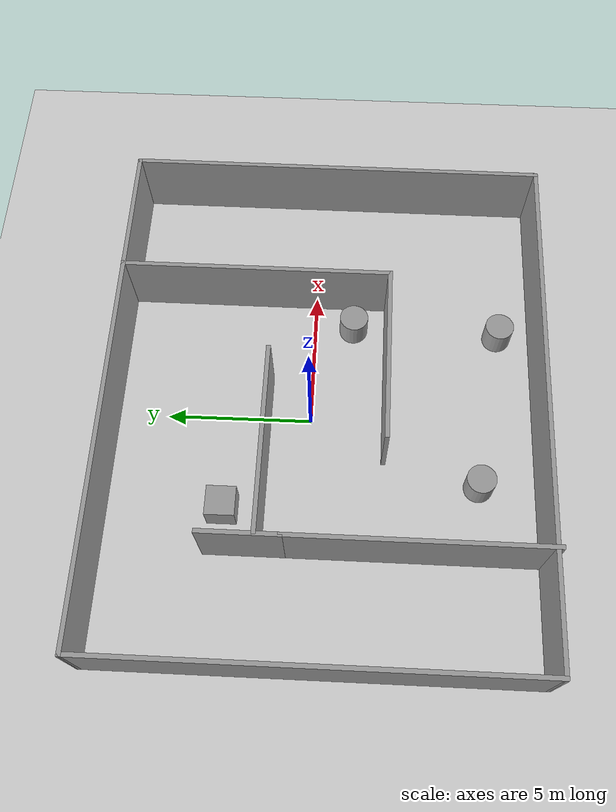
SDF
<sdf version="1.7">
 <world name="default">
  <light name="sun" type="directional">
   <pose>0 0 10 0 -0 0</pose>
   <diffuse>0.8 0.8 0.8 1</diffuse>
   <specular>0.2 0.2 0.2 1</specular>
   <attenuation>
    <range>1000</range>
    <constant>0.9</constant>
    <linear>0.01</linear>
    <quadratic>0.001</quadratic>
   </attenuation>
   <direction>-0.5 0.1 -0.9</direction>
   <spot><inner_angle>0</inner_angle><outer_angle>0</outer_angle><falloff>0</falloff></spot>
  </light>
  <model name="ground_plane">
   <static>1</static>
   <link name="link">
    <collision name="collision">
     <geometry><plane><normal>0 0 1</normal><size>100 100</size></plane></geometry>
     <surface>
      <contact><collide_bitmask>65535</collide_bitmask></contact>
      <friction><ode><mu>100</mu><mu2>50</mu2></ode></friction>
     </surface>
    </collision>
    <visual name="visual">
     <cast_shadows>0</cast_shadows>
     <geometry><plane><normal>0 0 1</normal><size>100 100</size></plane></geometry>
     <material>
      <script><uri>file://media/materials/scripts/gazebo.material</uri><name>Gazebo/Grey</name></script>
     </material>
    </visual>
   </link>
  </model>
  <gravity>0 0 -9.8</gravity>
  <magnetic_field>6e-06 2.3e-05 -4.2e-05</magnetic_field>
  <atmosphere type="adiabatic"/>
  <physics type="ode">
   <max_step_size>0.001</max_step_size>
   <real_time_factor>1</real_time_factor>
   <real_time_update_rate>1000</real_time_update_rate>
  </physics>
  <scene><ambient>0.4 0.4 0.4 1</ambient><background>0.7 0.7 0.7 1</background><shadows>1</shadows></scene>
  <spherical_coordinates>
   <surface_model>EARTH_WGS84</surface_model>
   <latitude_deg>0</latitude_deg>
   <longitude_deg>0</longitude_deg>
   <elevation>0</elevation>
   <heading_deg>0</heading_deg>
  </spherical_coordinates>
  <model name="room_2">
   <pose>0.262486 -0.566076 0 0 0 -1.57498</pose>
   <link name="Wall_16">
    <collision name="Wall_16_Collision">
     <geometry><box><size>14.75 0.15 2.5</size></box></geometry>
     <pose>0 0 1.25 0 -0 0</pose>
    </collision>
    <visual name="Wall_16_Visual">
     <pose>0 0 1.25 0 -0 0</pose>
     <geometry><box><size>14.75 0.15 2.5</size></box></geometry>
     <material>
      <script><uri>file://media/materials/scripts/gazebo.material</uri><name>Gazebo/Grey</name></script>
      <ambient>1 1 1 1</ambient>
     </material>
     <meta><layer>0</layer></meta>
    </visual>
    <pose>-0.063977 8.925 0 0 -0 3.14159</pose>
   </link>
   <link name="Wall_17">
    <collision name="Wall_17_Collision">
     <geometry><box><size>18 0.15 2.5</size></box></geometry>
     <pose>0 0 1.25 0 -0 0</pose>
    </collision>
    <visual name="Wall_17_Visual">
     <pose>0 0 1.25 0 -0 0</pose>
     <geometry><box><size>18 0.15 2.5</size></box></geometry>
     <material>
      <script><uri>file://media/materials/scripts/gazebo.material</uri><name>Gazebo/Grey</name></script>
      <ambient>1 1 1 1</ambient>
     </material>
     <meta><layer>0</layer></meta>
    </visual>
    <pose>-7.36398 0 0 0 -0 -1.5708</pose>
   </link>
   <link name="Wall_19">
    <collision name="Wall_19_Collision">
     <geometry><box><size>9.5 0.15 2.5</size></box></geometry>
     <pose>0 0 1.25 0 -0 0</pose>
    </collision>
    <visual name="Wall_19_Visual">
     <pose>0 0 1.25 0 -0 0</pose>
     <geometry><box><size>9.5 0.15 2.5</size></box></geometry>
     <material>
      <script><uri>file://media/materials/scripts/gazebo.material</uri><name>Gazebo/Grey</name></script>
      <ambient>1 1 1 1</ambient>
     </material>
     <meta><layer>0</layer></meta>
    </visual>
    <pose>-2.69326 4.43753 0 0 -0 0</pose>
   </link>
   <link name="Wall_20">
    <collision name="Wall_20_Collision">
     <geometry><box><size>6.25 0.15 2.5</size></box></geometry>
     <pose>0 0 1.25 0 -0 0</pose>
    </collision>
    <visual name="Wall_20_Visual">
     <pose>0 0 1.25 0 -0 0</pose>
     <geometry><box><size>6.25 0.15 2.5</size></box></geometry>
     <material>
      <script><uri>file://media/materials/scripts/gazebo.material</uri><name>Gazebo/Grey</name></script>
      <ambient>1 1 1 1</ambient>
     </material>
     <meta><layer>0</layer></meta>
    </visual>
    <pose>1.98175 1.38753 0 0 -0 -1.5708</pose>
   </link>
   <link name="Wall_22">
    <collision name="Wall_22_Collision">
     <geometry><box><size>8.75 0.15 2.5</size></box></geometry>
     <pose>0 0 1.25 0 -0 0</pose>
    </collision>
    <visual name="Wall_22_Visual">
     <pose>0 0 1.25 0 -0 0</pose>
     <geometry><box><size>8.75 0.15 2.5</size></box></geometry>
     <material>
      <script><uri>file://media/materials/scripts/gazebo.material</uri><name>Gazebo/Grey</name></script>
      <ambient>1 1 1 1</ambient>
     </material>
     <meta><layer>0</layer></meta>
    </visual>
    <pose>3.06826 -5.08534 0 0 -0 3.14159</pose>
   </link>
   <link name="Wall_23">
    <collision name="Wall_23_Collision">
     <geometry><box><size>2.75 0.15 2.5</size></box></geometry>
     <pose>0 0 1.25 0 -0 0</pose>
    </collision>
    <visual name="Wall_23_Visual">
     <pose>0 0 1.25 0 -0 0</pose>
     <geometry><box><size>2.75 0.15 2.5</size></box></geometry>
     <material>
      <script><uri>file://media/materials/scripts/gazebo.material</uri><name>Gazebo/Grey</name></script>
      <ambient>1 1 1 1</ambient>
     </material>
     <meta><layer>0</layer></meta>
    </visual>
    <pose>-2.53174 -5.08534 0 0 -0 3.14159</pose>
   </link>
   <link name="Wall_25">
    <collision name="Wall_25_Collision">
     <geometry><box><size>6.5 0.15 2.5</size></box></geometry>
     <pose>0 0 1.25 0 -0 0</pose>
    </collision>
    <visual name="Wall_25_Visual">
     <pose>0 0 1.25 0 -0 0</pose>
     <geometry><box><size>6.5 0.15 2.5</size></box></geometry>
     <material>
      <script><uri>file://media/materials/scripts/gazebo.material</uri><name>Gazebo/Grey</name></script>
      <ambient>1 1 1 1</ambient>
     </material>
     <meta><layer>0</layer></meta>
    </visual>
    <pose>-2.04821 -1.85713 0 0 -0 1.5708</pose>
   </link>
   <link name="Wall_7">
    <collision name="Wall_7_Collision">
     <geometry><box><size>14.75 0.15 2.5</size></box></geometry>
     <pose>0 0 1.25 0 -0 0</pose>
    </collision>
    <visual name="Wall_7_Visual">
     <pose>0 0 1.25 0 -0 0</pose>
     <geometry><box><size>14.75 0.15 2.5</size></box></geometry>
     <material>
      <script><uri>file://media/materials/scripts/gazebo.material</uri><name>Gazebo/Grey</name></script>
      <ambient>1 1 1 1</ambient>
     </material>
     <meta><layer>0</layer></meta>
    </visual>
    <pose>-0.063977 -8.925 0 0 -0 0</pose>
   </link>
   <link name="Wall_8">
    <collision name="Wall_8_Collision">
     <geometry><box><size>18 0.15 2.5</size></box></geometry>
     <pose>0 0 1.25 0 -0 0</pose>
    </collision>
    <visual name="Wall_8_Visual">
     <pose>0 0 1.25 0 -0 0</pose>
     <geometry><box><size>18 0.15 2.5</size></box></geometry>
     <material>
      <script><uri>file://media/materials/scripts/gazebo.material</uri><name>Gazebo/Grey</name></script>
      <ambient>1 1 1 1</ambient>
     </material>
     <meta><layer>0</layer></meta>
    </visual>
    <pose>7.23602 0 0 0 -0 1.5708</pose>
   </link>
   <static>1</static>
  </model>
  <model name="unit_cylinder">
   <pose>3.57051 -6.58075 0.499992 -3e-06 4e-06 0</pose>
   <link name="link">
    <inertial>
     <mass>1</mass>
     <inertia><ixx>0.145833</ixx><ixy>0</ixy><ixz>0</ixz><iyy>0.145833</iyy><iyz>0</iyz><izz>0.125</izz></inertia>
    </inertial>
    <collision name="collision">
     <geometry><cylinder><radius>0.5</radius><length>1</length></cylinder></geometry>
    </collision>
    <visual name="visual">
     <geometry><cylinder><radius>0.5</radius><length>1</length></cylinder></geometry>
     <material>
      <script><name>Gazebo/Grey</name><uri>file://media/materials/scripts/gazebo.material</uri></script>
     </material>
    </visual>
   </link>
  </model>
  <model name="unit_cylinder_0">
   <pose>3.71152 -1.37438 0.499998 3e-06 -4e-06 0</pose>
   <link name="link">
    <inertial>
     <mass>1</mass>
     <inertia><ixx>0.145833</ixx><ixy>0</ixy><ixz>0</ixz><iyy>0.145833</iyy><iyz>0</iyz><izz>0.125</izz></inertia>
    </inertial>
    <collision name="collision">
     <geometry><cylinder><radius>0.5</radius><length>1</length></cylinder></geometry>
    </collision>
    <visual name="visual">
     <geometry><cylinder><radius>0.5</radius><length>1</length></cylinder></geometry>
     <material>
      <script><name>Gazebo/Grey</name><uri>file://media/materials/scripts/gazebo.material</uri></script>
     </material>
    </visual>
   </link>
  </model>
  <model name="unit_box">
   <pose>-3.31896 2.81119 0.499995 -1e-05 -0 0</pose>
   <link name="link">
    <inertial>
     <mass>1</mass>
     <inertia>
      <ixx>0.166667</ixx>
      <ixy>0</ixy>
      <ixz>0</ixz>
      <iyy>0.166667</iyy>
      <iyz>0</iyz>
      <izz>0.166667</izz>
     </inertia>
    </inertial>
    <collision name="collision"><geometry><box><size>1 1 1</size></box></geometry></collision>
    <visual name="visual">
     <geometry><box><size>1 1 1</size></box></geometry>
     <material>
      <script><name>Gazebo/Grey</name><uri>file://media/materials/scripts/gazebo.material</uri></script>
     </material>
    </visual>
   </link>
  </model>
  <model name="unit_cylinder_1">
   <pose>-2.22014 -5.77907 0.499997 3e-06 4e-06 -0</pose>
   <link name="link">
    <inertial>
     <mass>1</mass>
     <inertia><ixx>0.145833</ixx><ixy>0</ixy><ixz>0</ixz><iyy>0.145833</iyy><iyz>0</iyz><izz>0.125</izz></inertia>
    </inertial>
    <collision name="collision">
     <geometry><cylinder><radius>0.5</radius><length>1</length></cylinder></geometry>
    </collision>
    <visual name="visual">
     <geometry><cylinder><radius>0.5</radius><length>1</length></cylinder></geometry>
     <material>
      <script><name>Gazebo/Grey</name><uri>file://media/materials/scripts/gazebo.material</uri></script>
     </material>
    </visual>
   </link>
  </model>
 </world>
</sdf>
